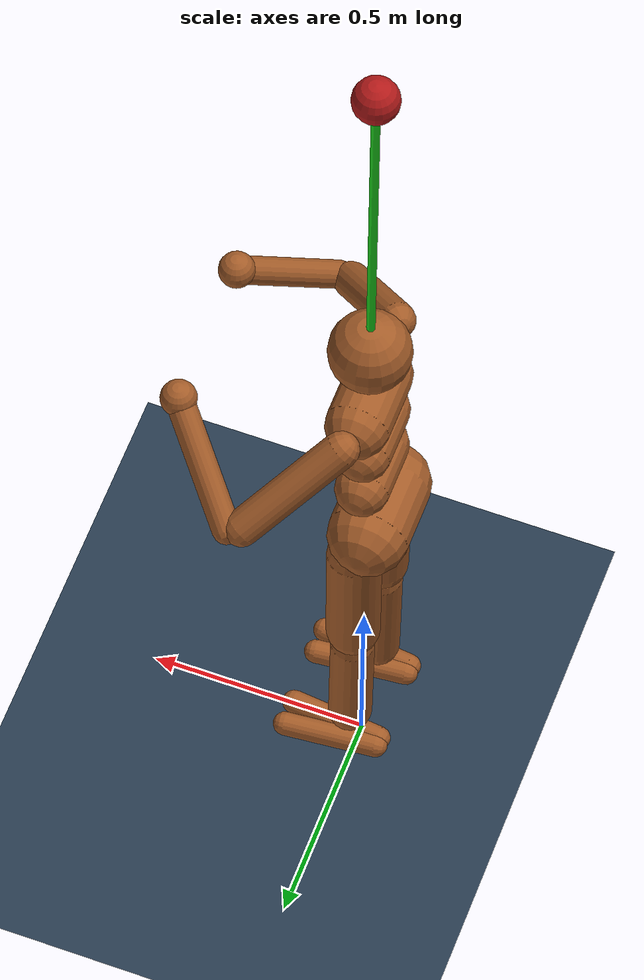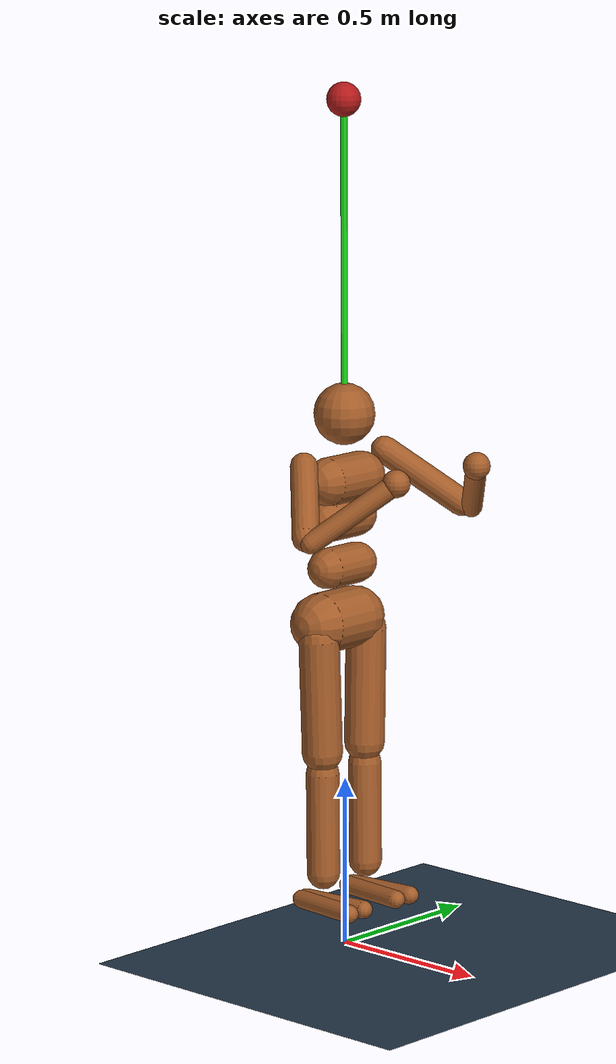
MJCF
<mujoco model='humanoid'>
    <compiler inertiafromgeom='true' angle='degree'/>
    <option solver='Newton'/>

    <default>
        <joint limited='true' damping='1' armature='0'/>
        <geom contype='1' conaffinity='1' condim='1' margin="0.001" solref=".02 1" solimp=".8 .8 .01" material="geom"/>
    </default>

    <option timestep='0.03' iterations="50" tolerance="1e-10" solver="Newton" jacobian="dense" cone="pyramidal"/>

    <size nstack="1000000" nuserdata="7"/>

    <visual>
        <map fogstart="3" fogend="5" force="0.1" znear="0.1"/>
        <quality shadowsize="2048" offsamples="8"/>
        <global offwidth="800" offheight="800"/>
    </visual>

    <statistic center="3 3 0" extent="10"/>

    <asset>
        <texture type="skybox" builtin="gradient" width="128" height="128" rgb1=".4 .6 .8" rgb2="0 0 0"/>
        <texture name="texgeom" type="cube" builtin="flat" mark="cross" width="127" height="1278" rgb1="0.8 0.6 0.4" rgb2="0.8 0.6 0.4" markrgb="1 1 1" random="0.01"/>
        <texture name="texplane" type="2d" builtin="checker" rgb1=".2 .3 .4" rgb2=".1 0.15 0.2" width="512" height="512"/>

        <material name='MatPlane' reflectance='0.2' texture="texplane" texrepeat="1 1" texuniform="true"/>
        <material name='geom' texture="texgeom" texuniform="true" rgba="0.8 0.6 .4 1"/>
    </asset>

    <worldbody>
        <geom name='floor' pos='3 3 0' size='5 5 1' type='plane' material="MatPlane" condim='3'/>

        <light directional='true' diffuse='.8 .8 .8' specular='0.3 0.3 0.3' pos='0 0 4.0' dir='0 0 -1'/>

        <body name="anchor" mocap="true" pos="0 0 2.5">
	        <geom type="sphere" size="0.05" rgba=".7 .1 .1 1"/>
	        <site name="anchor" type="sphere" size="0.01"/>
		</body>

        <body name='torso' pos='0 0 1.4'>
            <freejoint name="root"/>
            <geom name='torso1' type='capsule' fromto='0 -.07 0 0 .07 0'  size='0.07'/>
            <geom name='head' type='sphere' pos='0 0 .19' size='.09'/>
            <site name='head' type='sphere' pos='0 0 .19' size='.01'/>
            <geom name='uwaist' type='capsule' fromto='-.01 -.06 -.12 -.01 .06 -.12' size='0.06'/>
            <body name='lwaist' pos='-.01 0 -0.260' quat='1.000 0 -0.002 0' >
                <geom name='lwaist' type='capsule' fromto='0 -.06 0 0 .06 0'  size='0.06' />
                <joint name='abdomen_z' type='hinge' pos='0 0 0.065' axis='0 0 1' range='-45 45' damping='5' stiffness='20' armature='0.02' />
                <joint name='abdomen_y' type='hinge' pos='0 0 0.065' axis='0 1 0' range='-75 30' damping='5' stiffness='10' armature='0.02' />
                <body name='pelvis' pos='0 0 -0.165' quat='1.000 0 -0.002 0' >
                    <joint name='abdomen_x' type='hinge' pos='0 0 0.1' axis='1 0 0' range='-35 35' damping='5' stiffness='10' armature='0.02' />
                    <geom name='butt' type='capsule' fromto='-.02 -.07 0 -.02 .07 0'  size='0.09' />
                    <body name='right_thigh' pos='0 -0.1 -0.04' >
                        <joint name='right_hip_x' type='hinge' pos='0 0 0' axis='1 0 0' range='-25 5'   damping='5' stiffness='10' armature='0.01' />
                        <joint name='right_hip_z' type='hinge' pos='0 0 0' axis='0 0 1' range='-60 35'  damping='5' stiffness='10' armature='0.01' />
                        <joint name='right_hip_y' type='hinge' pos='0 0 0' axis='0 1 0' range='-120 20' damping='5' stiffness='20' armature='0.01' />
                        <geom name='right_thigh1' type='capsule' fromto='0 0 0 0 0.01 -.34'  size='0.06' />
                        <body name='right_shin' pos='0 0.01 -0.403' >
                            <joint name='right_knee' type='hinge' pos='0 0 .02' axis='0 -1 0' range='-160 -2' stiffness='1' armature='0.0060' />
                            <geom name='right_shin1' type='capsule' fromto='0 0 0 0 0 -.3'   size='0.049' />
                            <body name='right_foot' pos='0 0 -.39' >
                                <joint name='right_ankle_y' type='hinge' pos='0 0 0.08' axis='0 1 0'   range='-50 50' stiffness='4' armature='0.0008' />
                                <joint name='right_ankle_x' type='hinge' pos='0 0 0.04' axis='1 0 0.5' range='-50 50' stiffness='1'  armature='0.0006' />
                                <geom name='right_foot_cap1' type='capsule' fromto='-.07 -0.02 0 0.14 -0.04 0'  size='0.027' />
                                <geom name='right_foot_cap2' type='capsule' fromto='-.07 0 0 0.14  0.02 0'  size='0.027' />
                            </body>
                        </body>
                    </body>
                    <body name='left_thigh' pos='0 0.1 -0.04' >
                        <joint name='left_hip_x' type='hinge' pos='0 0 0' axis='-1 0 0' range='-25 5'  damping='5' stiffness='10' armature='0.01' />
                        <joint name='left_hip_z' type='hinge' pos='0 0 0' axis='0 0 -1' range='-60 35' damping='5' stiffness='10' armature='0.01' />
                        <joint name='left_hip_y' type='hinge' pos='0 0 0' axis='0 1 0' range='-120 20' damping='5' stiffness='20' armature='0.01' />
                        <geom name='left_thigh1' type='capsule' fromto='0 0 0 0 -0.01 -.34'  size='0.06' />
                        <body name='left_shin' pos='0 -0.01 -0.403' >
                            <joint name='left_knee' type='hinge' pos='0 0 .02' axis='0 -1 0' range='-160 -2' stiffness='1' armature='0.0060' />
                            <geom name='left_shin1' type='capsule' fromto='0 0 0 0 0 -.3'   size='0.049' />
                            <body name='left_foot' pos='0 0 -.39' >
                                <joint name='left_ankle_y' type='hinge' pos='0 0 0.08' axis='0 1 0'   range='-50 50'  stiffness='4' armature='0.0008' />
                                <joint name='left_ankle_x' type='hinge' pos='0 0 0.04' axis='1 0 0.5' range='-50 50'  stiffness='1'  armature='0.0006' />
                                <geom name='left_foot_cap1' type='capsule' fromto='-.07 0.02 0 0.14 0.04 0'  size='0.027' />
                                <geom name='left_foot_cap2' type='capsule' fromto='-.07 0 0 0.14  -0.02 0'  size='0.027' />
                            </body>
                        </body>
                    </body>
                </body>
            </body>
            <body name='right_upper_arm' pos='0 -0.17 0.06' >
                <joint name='right_shoulder1' type='hinge' pos='0 0 0' axis='2 1 1'  range='-85 60' stiffness='1' armature='0.0068' />
                <joint name='right_shoulder2' type='hinge' pos='0 0 0' axis='0 -1 1' range='-85 60' stiffness='1'  armature='0.0051' />
                <geom name='right_uarm1' type='capsule' fromto='0 0 0 .16 -.16 -.16'  size='0.04 0.16' />
                <body name='right_lower_arm' pos='.18 -.18 -.18' >
                    <joint name='right_elbow' type='hinge' pos='0 0 0' axis='0 -1 1' range='-90 50'  stiffness='0' armature='0.0028' />
                    <geom name='right_larm' type='capsule' fromto='0.01 0.01 0.01 .17 .17 .17'  size='0.031' />
                    <geom name='right_hand' type='sphere' pos='.18 .18 .18'  size='0.04'/>
                </body>
            </body>
            <body name='left_upper_arm' pos='0 0.17 0.06' >
                <joint name='left_shoulder1' type='hinge' pos='0 0 0' axis='2 -1 1' range='-60 85' stiffness='1' armature='0.0068' />
                <joint name='left_shoulder2' type='hinge' pos='0 0 0' axis='0 1 1' range='-60 85'  stiffness='1' armature='0.0051' />
                <geom name='left_uarm1' type='capsule' fromto='0 0 0 .16 .16 -.16'  size='0.04 0.16' />
                <body name='left_lower_arm' pos='.18 .18 -.18' >
                    <joint name='left_elbow' type='hinge' pos='0 0 0' axis='0 -1 -1' range='-90 50' stiffness='0' armature='0.0028' />
                    <geom name='left_larm' type='capsule' fromto='0.01 -0.01 0.01 .17 -.17 .17'  size='0.031' />
                    <geom name='left_hand' type='sphere' pos='.18 -.18 .18'  size='0.04'/>
                </body>
            </body>
        </body>
    </worldbody>

    <tendon>
    	<spatial width="0.01" stiffness="1000" range="0 1.3" limited="false" rgba=".1 .8 .1 1">
    		<site site="anchor"/>
    		<site site="head"/>
    	</spatial>
    </tendon>

</mujoco>
